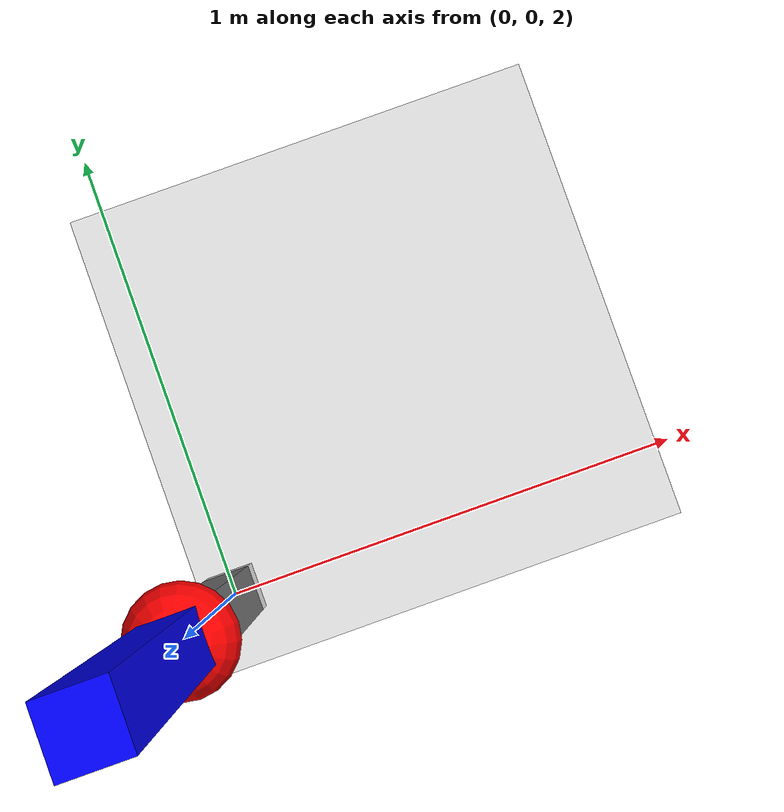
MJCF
<!-- This is a MuJoCo xml file  -->
<mujoco model="floating_base">

    <visual>
        <global azimuth="180" elevation="-20"/>
        <headlight ambient="0.3 0.3 0.3" diffuse="0.6 0.6 0.6" specular="0 0 0"/>
    </visual>

    <worldbody>
        <light pos="0 0 1"/>
        <geom type="plane" size="5 5 0.1" rgba="0.9 0.9 0.9 0.3"/>
        <body name="base" pos="0 0 2">
            <joint name="free" type="free"/>
            <geom type="box" size="0.05 0.05 0.05" rgba="1 1 1 1"/>
            <body name="link1" pos="0 0 0.05">
                <inertial pos="0 0 0.5" mass="4" fullinertia="1 1 1 0 0 0"/>
                <geom type="box" size="0.05 0.05 0.5" pos="0 0 0.5" euler="0 0 0"/>
                <joint name="joint1" type="hinge" axis="0 -1 0"/>
                <site name="tip1" size="0.1" pos="0 0 1" rgba="1 0 0 1"/>
                <body name="link2" pos="0 0 1">
                    <geom type="box" size="0.05 0.05 0.5" pos="0 0 0.5" rgba="0 0 1 1"/>
                    <joint name="joint2" type="hinge" axis="0 -1 0"/>
                </body>
            </body>
        </body>
    </worldbody>

</mujoco>
